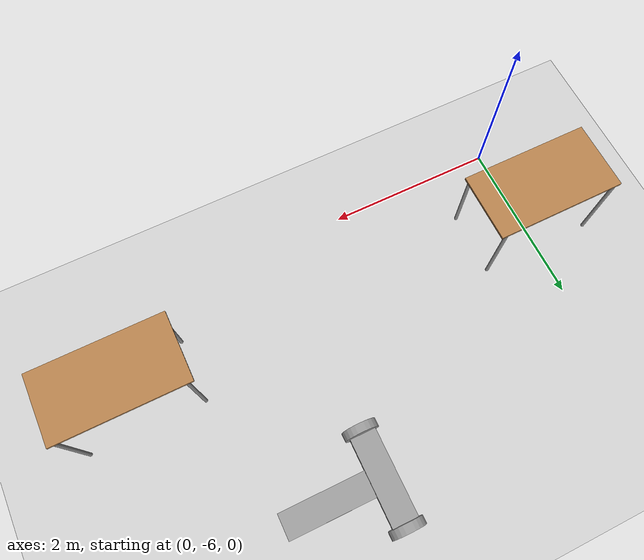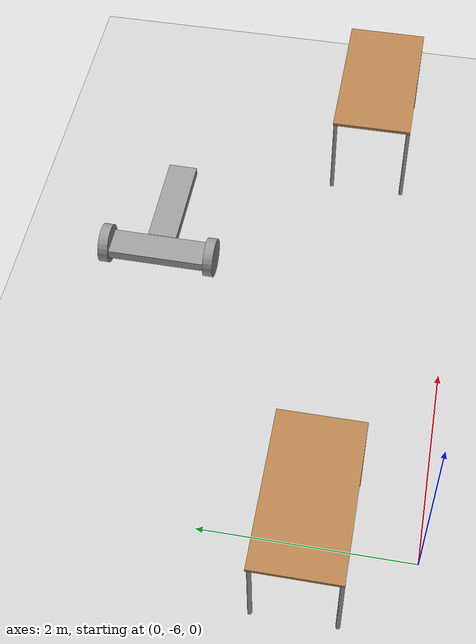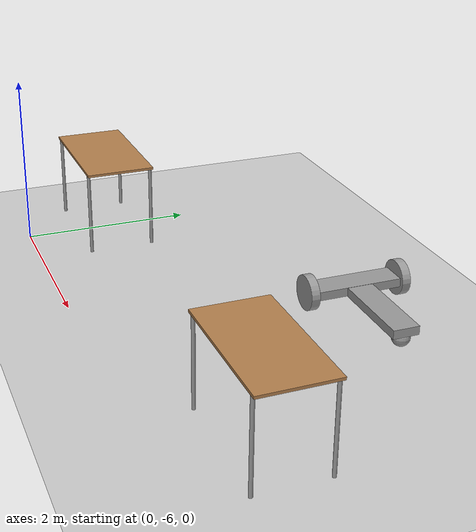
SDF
<sdf version="1.6">
 <world name="default">
  <model name="ground_plane">
   <static>1</static>
   <link name="link">
    <collision name="collision">
     <geometry><plane><normal>0 0 1</normal><size>100 100</size></plane></geometry>
     <surface><friction><ode><mu>100</mu><mu2>50</mu2></ode></friction></surface>
    </collision>
    <visual name="visual">
     <cast_shadows>0</cast_shadows>
     <geometry><plane><normal>0 0 1</normal><size>100 100</size></plane></geometry>
     <material>
      <script><uri>file://media/materials/scripts/gazebo.material</uri><name>Gazebo/Grey</name></script>
     </material>
    </visual>
   </link>
  </model>
  <model name="table_clone_0">
   <static>1</static>
   <link name="link">
    <collision name="surface">
     <pose>0 0 1 0 -0 0</pose>
     <geometry><box><size>1.5 0.8 0.03</size></box></geometry>
     <surface><friction><ode><mu>0.6</mu><mu2>0.6</mu2></ode></friction></surface>
    </collision>
    <visual name="visual1">
     <pose>0 0 1 0 -0 0</pose>
     <geometry><box><size>1.5 0.8 0.03</size></box></geometry>
     <material>
      <script><uri>file://media/materials/scripts/gazebo.material</uri><name>Gazebo/Wood</name></script>
     </material>
    </visual>
    <collision name="front_left_leg">
     <pose>0.68 0.38 0.5 0 -0 0</pose>
     <geometry><cylinder><radius>0.02</radius><length>1</length></cylinder></geometry>
    </collision>
    <visual name="front_left_leg">
     <pose>0.68 0.38 0.5 0 -0 0</pose>
     <geometry><cylinder><radius>0.02</radius><length>1</length></cylinder></geometry>
     <material>
      <script><uri>file://media/materials/scripts/gazebo.material</uri><name>Gazebo/Grey</name></script>
     </material>
    </visual>
    <collision name="front_right_leg">
     <pose>0.68 -0.38 0.5 0 -0 0</pose>
     <geometry><cylinder><radius>0.02</radius><length>1</length></cylinder></geometry>
    </collision>
    <visual name="front_right_leg">
     <pose>0.68 -0.38 0.5 0 -0 0</pose>
     <geometry><cylinder><radius>0.02</radius><length>1</length></cylinder></geometry>
     <material>
      <script><uri>file://media/materials/scripts/gazebo.material</uri><name>Gazebo/Grey</name></script>
     </material>
    </visual>
    <collision name="back_right_leg">
     <pose>-0.68 -0.38 0.5 0 -0 0</pose>
     <geometry><cylinder><radius>0.02</radius><length>1</length></cylinder></geometry>
    </collision>
    <visual name="back_right_leg">
     <pose>-0.68 -0.38 0.5 0 -0 0</pose>
     <geometry><cylinder><radius>0.02</radius><length>1</length></cylinder></geometry>
     <material>
      <script><uri>file://media/materials/scripts/gazebo.material</uri><name>Gazebo/Grey</name></script>
     </material>
    </visual>
    <collision name="back_left_leg">
     <pose>-0.68 0.38 0.5 0 -0 0</pose>
     <geometry><cylinder><radius>0.02</radius><length>1</length></cylinder></geometry>
    </collision>
    <visual name="back_left_leg">
     <pose>-0.68 0.38 0.5 0 -0 0</pose>
     <geometry><cylinder><radius>0.02</radius><length>1</length></cylinder></geometry>
     <material>
      <script><uri>file://media/materials/scripts/gazebo.material</uri><name>Gazebo/Grey</name></script>
     </material>
    </visual>
   </link>
   <pose>0 -5 0 0 -0 0</pose>
  </model>
  <model name="table_clone_1">
   <static>1</static>
   <link name="link">
    <collision name="surface">
     <pose>0 0 1 0 -0 0</pose>
     <geometry><box><size>1.5 0.8 0.03</size></box></geometry>
     <surface><friction><ode><mu>0.6</mu><mu2>0.6</mu2></ode></friction></surface>
    </collision>
    <visual name="visual1">
     <pose>0 0 1 0 -0 0</pose>
     <geometry><box><size>1.5 0.8 0.03</size></box></geometry>
     <material>
      <script><uri>file://media/materials/scripts/gazebo.material</uri><name>Gazebo/Wood</name></script>
     </material>
    </visual>
    <collision name="front_left_leg">
     <pose>0.68 0.38 0.5 0 -0 0</pose>
     <geometry><cylinder><radius>0.02</radius><length>1</length></cylinder></geometry>
    </collision>
    <visual name="front_left_leg">
     <pose>0.68 0.38 0.5 0 -0 0</pose>
     <geometry><cylinder><radius>0.02</radius><length>1</length></cylinder></geometry>
     <material>
      <script><uri>file://media/materials/scripts/gazebo.material</uri><name>Gazebo/Grey</name></script>
     </material>
    </visual>
    <collision name="front_right_leg">
     <pose>0.68 -0.38 0.5 0 -0 0</pose>
     <geometry><cylinder><radius>0.02</radius><length>1</length></cylinder></geometry>
    </collision>
    <visual name="front_right_leg">
     <pose>0.68 -0.38 0.5 0 -0 0</pose>
     <geometry><cylinder><radius>0.02</radius><length>1</length></cylinder></geometry>
     <material>
      <script><uri>file://media/materials/scripts/gazebo.material</uri><name>Gazebo/Grey</name></script>
     </material>
    </visual>
    <collision name="back_right_leg">
     <pose>-0.68 -0.38 0.5 0 -0 0</pose>
     <geometry><cylinder><radius>0.02</radius><length>1</length></cylinder></geometry>
    </collision>
    <visual name="back_right_leg">
     <pose>-0.68 -0.38 0.5 0 -0 0</pose>
     <geometry><cylinder><radius>0.02</radius><length>1</length></cylinder></geometry>
     <material>
      <script><uri>file://media/materials/scripts/gazebo.material</uri><name>Gazebo/Grey</name></script>
     </material>
    </visual>
    <collision name="back_left_leg">
     <pose>-0.68 0.38 0.5 0 -0 0</pose>
     <geometry><cylinder><radius>0.02</radius><length>1</length></cylinder></geometry>
    </collision>
    <visual name="back_left_leg">
     <pose>-0.68 0.38 0.5 0 -0 0</pose>
     <geometry><cylinder><radius>0.02</radius><length>1</length></cylinder></geometry>
     <material>
      <script><uri>file://media/materials/scripts/gazebo.material</uri><name>Gazebo/Grey</name></script>
     </material>
    </visual>
   </link>
   <pose>5 -5 0 0 -0 0</pose>
  </model>
  <model name="myRobot_0">
   <link name="link_0">
    <inertial>
     <mass>1</mass>
     <inertia>
      <ixx>0.166667</ixx>
      <ixy>0</ixy>
      <ixz>0</ixz>
      <iyy>0.166667</iyy>
      <iyz>0</iyz>
      <izz>0.166667</izz>
     </inertia>
     <pose>-0.01 0 0 0 -0 0</pose>
    </inertial>
    <pose>0.00249 0.000674 0.2 3.14159 0.001593 3.14159</pose>
    <visual name="visual">
     <geometry><box><size>0.3 1 0.1</size></box></geometry>
     <material>
      <lighting>1</lighting>
      <script><uri>file://media/materials/scripts/gazebo.material</uri><name>Gazebo/Grey</name></script>
      <shader type="pixel"><normal_map>__default__</normal_map></shader>
      <ambient>0.3 0.3 0.3 1</ambient>
      <diffuse>0.7 0.7 0.7 1</diffuse>
      <specular>0.01 0.01 0.01 1</specular>
      <emissive>0 0 0 1</emissive>
     </material>
    </visual>
    <collision name="collision">
     <geometry><box><size>0.3 1 0.1</size></box></geometry>
     <surface>
      <friction>
       <ode><mu>1</mu><mu2>1</mu2><fdir1>0 0 0</fdir1><slip1>0</slip1><slip2>0</slip2></ode>
       <torsional>
        <coefficient>1</coefficient>
        <patch_radius>0</patch_radius>
        <surface_radius>0</surface_radius>
        <use_patch_radius>1</use_patch_radius>
        <ode><slip>0</slip></ode>
       </torsional>
      </friction>
      <bounce><restitution_coefficient>0</restitution_coefficient><threshold>1e+06</threshold></bounce>
      <contact>
       <collide_without_contact>0</collide_without_contact>
       <collide_without_contact_bitmask>1</collide_without_contact_bitmask>
       <collide_bitmask>1</collide_bitmask>
       <ode>
        <soft_cfm>0</soft_cfm>
        <soft_erp>0.2</soft_erp>
        <kp>1e+13</kp>
        <kd>1</kd>
        <max_vel>0.01</max_vel>
        <min_depth>0</min_depth>
       </ode>
       <bullet>
        <split_impulse>1</split_impulse>
        <split_impulse_penetration_threshold>-0.01</split_impulse_penetration_threshold>
        <soft_cfm>0</soft_cfm>
        <soft_erp>0.2</soft_erp>
        <kp>1e+13</kp>
        <kd>1</kd>
       </bullet>
      </contact>
     </surface>
    </collision>
   </link>
   <link name="link_0_0">
    <inertial>
     <mass>1</mass>
     <inertia><ixx>0.1</ixx><ixy>0</ixy><ixz>0</ixz><iyy>0.1</iyy><iyz>0</iyz><izz>0.1</izz></inertia>
    </inertial>
    <pose>-1.04973 -1e-06 0.1 -3.14159 0.001372 3.14131</pose>
    <visual name="visual">
     <geometry><sphere><radius>0.1</radius></sphere></geometry>
     <material>
      <lighting>1</lighting>
      <script><uri>file://media/materials/scripts/gazebo.material</uri><name>Gazebo/Grey</name></script>
      <shader type="pixel"><normal_map>__default__</normal_map></shader>
      <ambient>0.3 0.3 0.3 1</ambient>
      <diffuse>0.7 0.7 0.7 1</diffuse>
      <specular>0.01 0.01 0.01 1</specular>
      <emissive>0 0 0 1</emissive>
     </material>
    </visual>
    <collision name="collision">
     <geometry><sphere><radius>0.1</radius></sphere></geometry>
     <surface>
      <friction>
       <ode><mu>1</mu><mu2>1</mu2><fdir1>0 0 0</fdir1><slip1>0</slip1><slip2>0</slip2></ode>
       <torsional>
        <coefficient>1</coefficient>
        <patch_radius>0</patch_radius>
        <surface_radius>0</surface_radius>
        <use_patch_radius>1</use_patch_radius>
        <ode><slip>0</slip></ode>
       </torsional>
      </friction>
      <bounce><restitution_coefficient>0</restitution_coefficient><threshold>1e+06</threshold></bounce>
      <contact>
       <collide_without_contact>0</collide_without_contact>
       <collide_without_contact_bitmask>1</collide_without_contact_bitmask>
       <collide_bitmask>1</collide_bitmask>
       <ode>
        <soft_cfm>0</soft_cfm>
        <soft_erp>0.2</soft_erp>
        <kp>1e+13</kp>
        <kd>1</kd>
        <max_vel>0.01</max_vel>
        <min_depth>0</min_depth>
       </ode>
       <bullet>
        <split_impulse>1</split_impulse>
        <split_impulse_penetration_threshold>-0.01</split_impulse_penetration_threshold>
        <soft_cfm>0</soft_cfm>
        <soft_erp>0.2</soft_erp>
        <kp>1e+13</kp>
        <kd>1</kd>
       </bullet>
      </contact>
     </surface>
    </collision>
   </link>
   <link name="link_0_clone_clone">
    <inertial>
     <mass>1</mass>
     <inertia>
      <ixx>0.166667</ixx>
      <ixy>0</ixy>
      <ixz>0</ixz>
      <iyy>0.166667</iyy>
      <iyz>0</iyz>
      <izz>0.166667</izz>
     </inertia>
     <pose>-0.01 0 0 0 -0 0</pose>
    </inertial>
    <pose>-0.650318 0.000187 0.19965 -3.14022 -0 1.5707</pose>
    <visual name="visual">
     <geometry><box><size>0.3 1 0.1</size></box></geometry>
     <material>
      <lighting>1</lighting>
      <script><uri>file://media/materials/scripts/gazebo.material</uri><name>Gazebo/Grey</name></script>
      <shader type="pixel"><normal_map>__default__</normal_map></shader>
      <ambient>0.3 0.3 0.3 1</ambient>
      <diffuse>0.7 0.7 0.7 1</diffuse>
      <specular>0.01 0.01 0.01 1</specular>
      <emissive>0 0 0 1</emissive>
     </material>
    </visual>
    <collision name="collision">
     <geometry><box><size>0.3 1 0.1</size></box></geometry>
     <surface>
      <friction>
       <ode><mu>1</mu><mu2>1</mu2><fdir1>0 0 0</fdir1><slip1>0</slip1><slip2>0</slip2></ode>
       <torsional>
        <coefficient>1</coefficient>
        <patch_radius>0</patch_radius>
        <surface_radius>0</surface_radius>
        <use_patch_radius>1</use_patch_radius>
        <ode><slip>0</slip></ode>
       </torsional>
      </friction>
      <bounce><restitution_coefficient>0</restitution_coefficient><threshold>1e+06</threshold></bounce>
      <contact>
       <collide_without_contact>0</collide_without_contact>
       <collide_without_contact_bitmask>1</collide_without_contact_bitmask>
       <collide_bitmask>1</collide_bitmask>
       <ode>
        <soft_cfm>0</soft_cfm>
        <soft_erp>0.2</soft_erp>
        <kp>1e+13</kp>
        <kd>1</kd>
        <max_vel>0.01</max_vel>
        <min_depth>0</min_depth>
       </ode>
       <bullet>
        <split_impulse>1</split_impulse>
        <split_impulse_penetration_threshold>-0.01</split_impulse_penetration_threshold>
        <soft_cfm>0</soft_cfm>
        <soft_erp>0.2</soft_erp>
        <kp>1e+13</kp>
        <kd>1</kd>
       </bullet>
      </contact>
     </surface>
    </collision>
   </link>
   <link name="link_2">
    <inertial>
     <mass>1</mass>
     <inertia><ixx>0.145833</ixx><ixy>0</ixy><ixz>0</ixz><iyy>0.145833</iyy><iyz>0</iyz><izz>0.125</izz></inertia>
    </inertial>
    <pose>0 -0.550019 0.2 1.5707 -0 0</pose>
    <visual name="visual">
     <geometry><cylinder><radius>0.2</radius><length>0.1</length></cylinder></geometry>
     <material>
      <lighting>1</lighting>
      <script><uri>file://media/materials/scripts/gazebo.material</uri><name>Gazebo/Grey</name></script>
      <shader type="pixel"><normal_map>__default__</normal_map></shader>
      <ambient>0.3 0.3 0.3 1</ambient>
      <diffuse>0.7 0.7 0.7 1</diffuse>
      <specular>0.01 0.01 0.01 1</specular>
      <emissive>0 0 0 1</emissive>
     </material>
    </visual>
    <collision name="collision">
     <geometry><cylinder><radius>0.2</radius><length>0.1</length></cylinder></geometry>
     <surface>
      <friction>
       <ode><mu>1</mu><mu2>1</mu2><fdir1>0 0 0</fdir1><slip1>0</slip1><slip2>0</slip2></ode>
       <torsional>
        <coefficient>1</coefficient>
        <patch_radius>0</patch_radius>
        <surface_radius>0</surface_radius>
        <use_patch_radius>1</use_patch_radius>
        <ode><slip>0</slip></ode>
       </torsional>
      </friction>
      <bounce><restitution_coefficient>0</restitution_coefficient><threshold>1e+06</threshold></bounce>
      <contact>
       <collide_without_contact>0</collide_without_contact>
       <collide_without_contact_bitmask>1</collide_without_contact_bitmask>
       <collide_bitmask>1</collide_bitmask>
       <ode>
        <soft_cfm>0</soft_cfm>
        <soft_erp>0.2</soft_erp>
        <kp>1e+13</kp>
        <kd>1</kd>
        <max_vel>0.01</max_vel>
        <min_depth>0</min_depth>
       </ode>
       <bullet>
        <split_impulse>1</split_impulse>
        <split_impulse_penetration_threshold>-0.01</split_impulse_penetration_threshold>
        <soft_cfm>0</soft_cfm>
        <soft_erp>0.2</soft_erp>
        <kp>1e+13</kp>
        <kd>1</kd>
       </bullet>
      </contact>
     </surface>
    </collision>
   </link>
   <link name="link_2_clone">
    <inertial>
     <mass>1</mass>
     <inertia><ixx>0.145833</ixx><ixy>0</ixy><ixz>0</ixz><iyy>0.145833</iyy><iyz>0</iyz><izz>0.125</izz></inertia>
    </inertial>
    <pose>0 0.550019 0.2 1.5707 -0 0</pose>
    <visual name="visual">
     <geometry><cylinder><radius>0.2</radius><length>0.1</length></cylinder></geometry>
     <material>
      <lighting>1</lighting>
      <script><uri>file://media/materials/scripts/gazebo.material</uri><name>Gazebo/Grey</name></script>
      <shader type="pixel"><normal_map>__default__</normal_map></shader>
      <ambient>0.3 0.3 0.3 1</ambient>
      <diffuse>0.7 0.7 0.7 1</diffuse>
      <specular>0.01 0.01 0.01 1</specular>
      <emissive>0 0 0 1</emissive>
     </material>
    </visual>
    <collision name="collision">
     <geometry><cylinder><radius>0.2</radius><length>0.1</length></cylinder></geometry>
     <surface>
      <friction>
       <ode><mu>1</mu><mu2>1</mu2><fdir1>0 0 0</fdir1><slip1>0</slip1><slip2>0</slip2></ode>
       <torsional>
        <coefficient>1</coefficient>
        <patch_radius>0</patch_radius>
        <surface_radius>0</surface_radius>
        <use_patch_radius>1</use_patch_radius>
        <ode><slip>0</slip></ode>
       </torsional>
      </friction>
      <bounce><restitution_coefficient>0</restitution_coefficient><threshold>1e+06</threshold></bounce>
      <contact>
       <collide_without_contact>0</collide_without_contact>
       <collide_without_contact_bitmask>1</collide_without_contact_bitmask>
       <collide_bitmask>1</collide_bitmask>
       <ode>
        <soft_cfm>0</soft_cfm>
        <soft_erp>0.2</soft_erp>
        <kp>1e+13</kp>
        <kd>1</kd>
        <max_vel>0.01</max_vel>
        <min_depth>0</min_depth>
       </ode>
       <bullet>
        <split_impulse>1</split_impulse>
        <split_impulse_penetration_threshold>-0.01</split_impulse_penetration_threshold>
        <soft_cfm>0</soft_cfm>
        <soft_erp>0.2</soft_erp>
        <kp>1e+13</kp>
        <kd>1</kd>
       </bullet>
      </contact>
     </surface>
    </collision>
   </link>
   <joint name="link_0_JOINT_2" type="revolute">
    <parent>link_0</parent>
    <child>link_2</child>
    <axis>
     <xyz>0 0 1</xyz>
     <use_parent_model_frame>0</use_parent_model_frame>
     <limit>
      <lower>-1.79769e+308</lower>
      <upper>1.79769e+308</upper>
      <effort>-1</effort>
      <velocity>-1</velocity>
     </limit>
     <dynamics>
      <spring_reference>0</spring_reference>
      <spring_stiffness>0</spring_stiffness>
      <damping>0</damping>
      <friction>0</friction>
     </dynamics>
    </axis>
    <physics>
     <ode><limit><cfm>0</cfm><erp>0.2</erp></limit><suspension><cfm>0</cfm><erp>0.2</erp></suspension></ode>
    </physics>
   </joint>
   <joint name="link_0_JOINT_3_0" type="fixed">
    <parent>link_0</parent>
    <child>link_0_clone_clone</child>
    <physics>
     <ode><limit><cfm>0</cfm><erp>0.2</erp></limit><suspension><cfm>0</cfm><erp>0.2</erp></suspension></ode>
    </physics>
   </joint>
   <joint name="link_0_JOINT_3" type="revolute">
    <parent>link_0</parent>
    <child>link_2_clone</child>
    <axis>
     <xyz>0 0 1</xyz>
     <use_parent_model_frame>0</use_parent_model_frame>
     <limit>
      <lower>-1.79769e+308</lower>
      <upper>1.79769e+308</upper>
      <effort>-1</effort>
      <velocity>-1</velocity>
     </limit>
     <dynamics>
      <spring_reference>0</spring_reference>
      <spring_stiffness>0</spring_stiffness>
      <damping>0</damping>
      <friction>0</friction>
     </dynamics>
    </axis>
    <physics>
     <ode><limit><cfm>0</cfm><erp>0.2</erp></limit><suspension><cfm>0</cfm><erp>0.2</erp></suspension></ode>
    </physics>
   </joint>
   <joint name="link_0_clone_clone_JOINT_7" type="fixed">
    <parent>link_0_clone_clone</parent>
    <child>link_0_0</child>
    <physics>
     <ode><limit><cfm>0</cfm><erp>0.2</erp></limit><suspension><cfm>0</cfm><erp>0.2</erp></suspension></ode>
    </physics>
   </joint>
   <static>0</static>
   <pose>2.92921 -2.99959 3e-06 3e-06 -3e-06 3.13554</pose>
  </model>
 </world>
</sdf>
